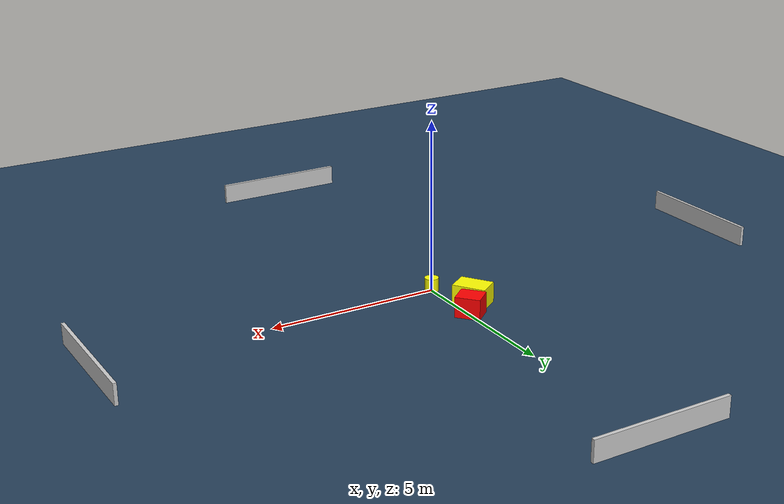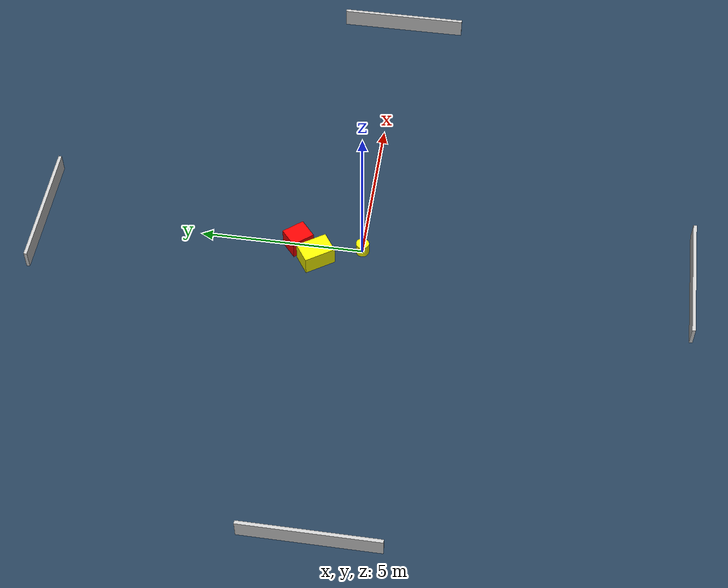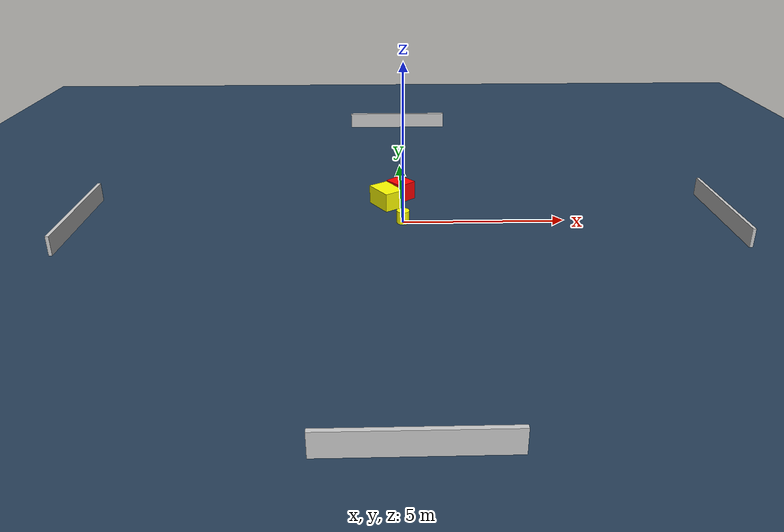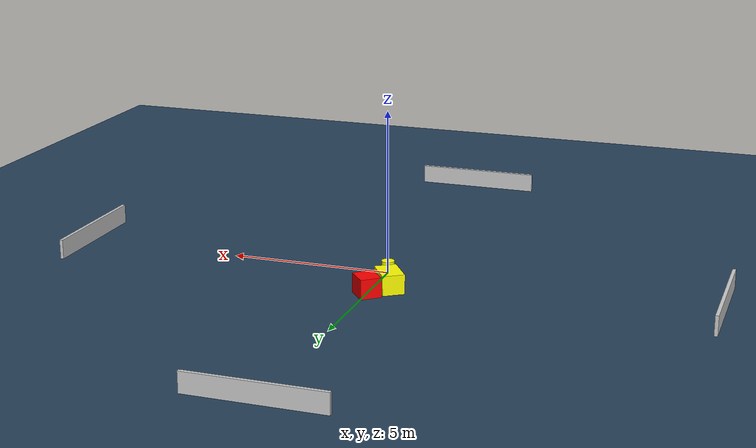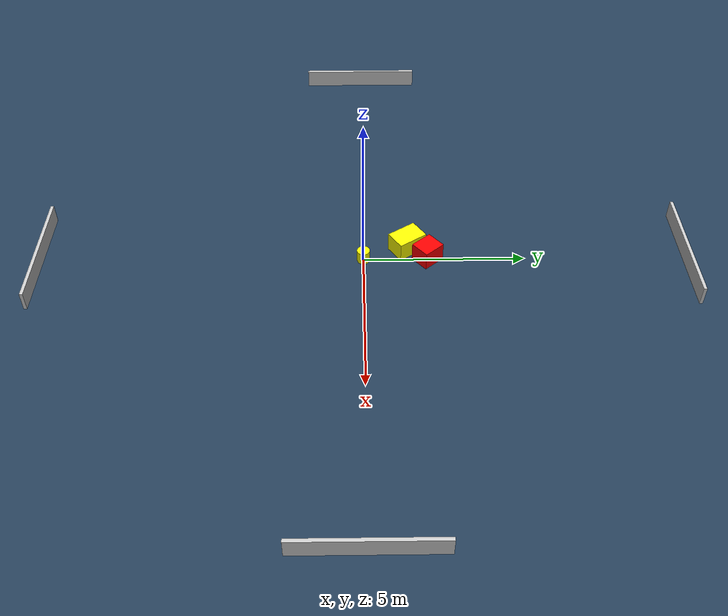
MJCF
<?xml version="1.0" ?>
<mujoco model="generated_environment">
  <option timestep="0.01" integrator="RK4" cone="elliptic"/>
  <default>
    <geom density="1"/>
  </default>
  <asset>
    <texture builtin="gradient" height="3072" name="skybox" rgb1="0.3 0.5 0.7" rgb2="0 0 0" type="skybox" width="512"/>
    <texture builtin="checker" height="300" name="groundplane" rgb1="0.2 0.3 0.4" rgb2="0.1 0.2 0.3" type="2d" width="300"/>
    <material name="groundplane" reflectance="0.2" texrepeat="5 5" texture="groundplane"/>
  </asset>
  <worldbody>
    <light dir="0 0 -1" directional="true" pos="0 0 1.5"/>
    <geom condim="3" friction="0.5 0.005 0.001" material="groundplane" name="floor" pos="0 0 0" size="0 0 0.05" type="plane"/>
    <body name="walls">
      <geom name="wall_1" condim="4" pos="-10.0 0.0 0.3" rgba="0.800000011920929 0.800000011920929 0.800000011920929 1.0" size="0.05 2.0 0.3" type="box"/>
      <geom name="wall_2" condim="4" pos="10.0 0.0 0.3" rgba="0.800000011920929 0.800000011920929 0.800000011920929 1.0" size="0.05 2.0 0.3" type="box"/>
      <geom name="wall_3" condim="4" pos="0.0 -10.0 0.3" rgba="0.800000011920929 0.800000011920929 0.800000011920929 1.0" size="2.0 0.05 0.3" type="box"/>
      <geom name="wall_4" condim="4" pos="0.0 10.0 0.3" rgba="0.800000011920929 0.800000011920929 0.800000011920929 1.0" size="2.0 0.05 0.3" type="box"/>
    </body>
    <body name="robot">
      <joint name="joint_x" type="slide" pos="0 0 0" axis="1 0 0"/>
      <joint name="joint_y" type="slide" pos="0 0 0" axis="0 1 0"/>
      <geom name="robot" type="cylinder" pos="0.0 0.0 0.2" size="0.2 0.2 0.0" mass="5.0" friction="1.0 0.005 0.0001" condim="4" rgba="1.0 1.0 0.0 1.0"/>
    </body>
    <body name="obstacle_1_movable">
      <geom name="obstacle_1_movable" condim="4" pos="-0.5079540708230067 1.3699868698804285 0.3" euler="0 0 33.87886587813907" friction="0.0 0.005 0.001" rgba="1.0 1.0 0.0 1.0" size="0.3363453348398796 0.4860175625139564 0.3" type="box" mass="0.1"/>
      <joint type="free"/>
    </body>
    <body name="obstacle_2_static">
      <geom name="obstacle_2_static" condim="4" pos="-0.029871826680873095 1.986453068656759 0.3" euler="0 0 310.2771618666877" friction="0.0 0.005 0.001" rgba="1.0 0.0 0.0 1.0" size="0.35865513974110474 0.31640103755095506 0.3" type="box"/>
    </body>
  </worldbody>
  <actuator>
    <motor name="actuator_x" joint="joint_x" gear="1" ctrlrange="-1 1"/>
    <motor name="actuator_y" joint="joint_y" gear="1" ctrlrange="-1 1"/>
  </actuator>
</mujoco>
